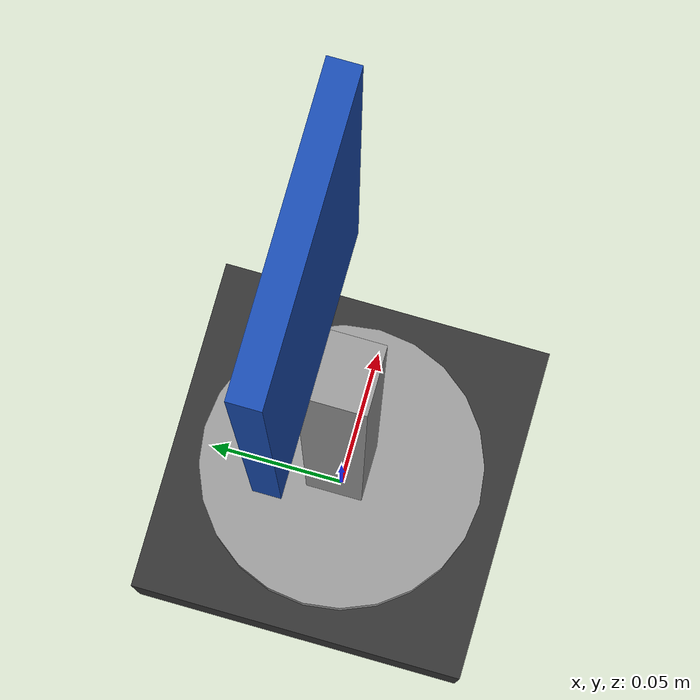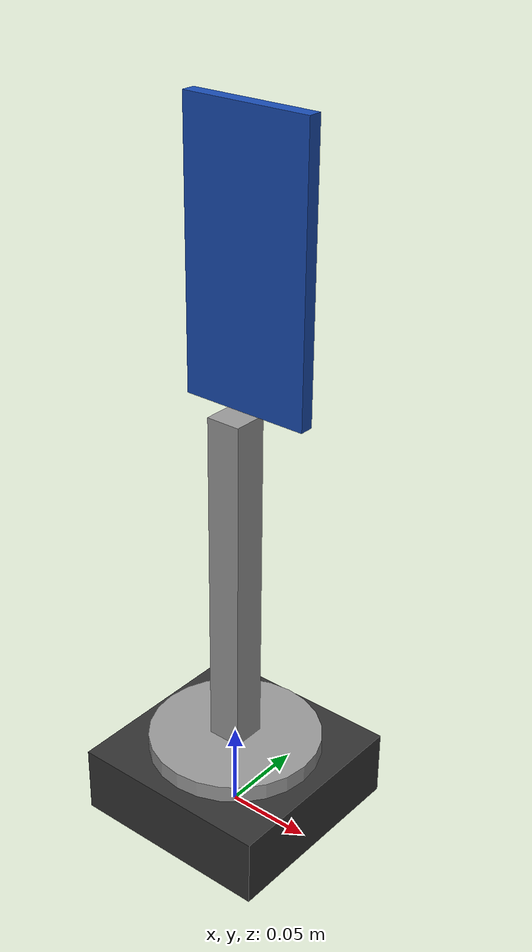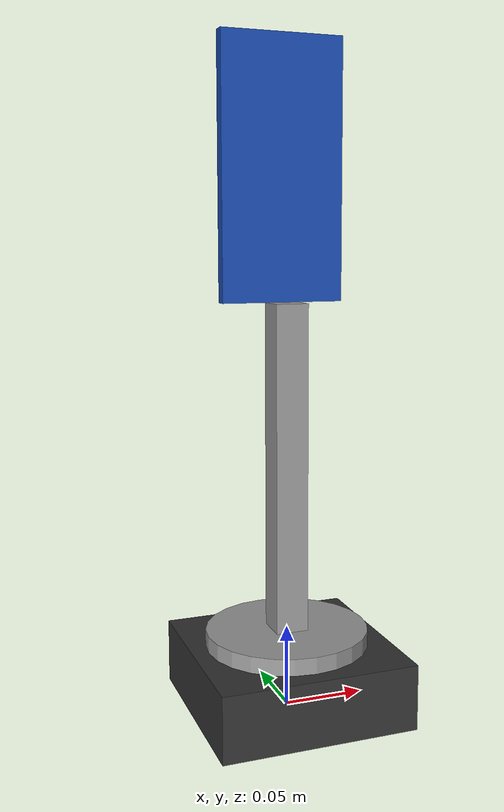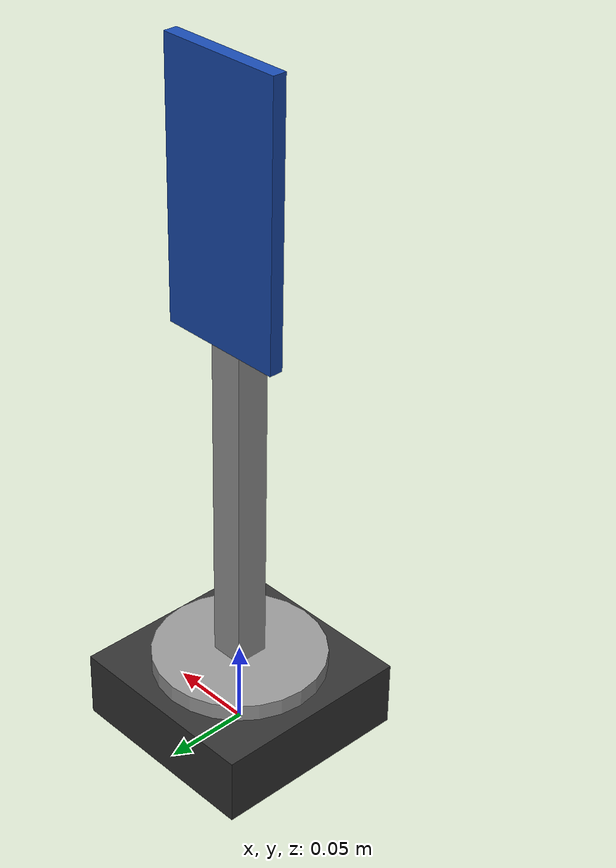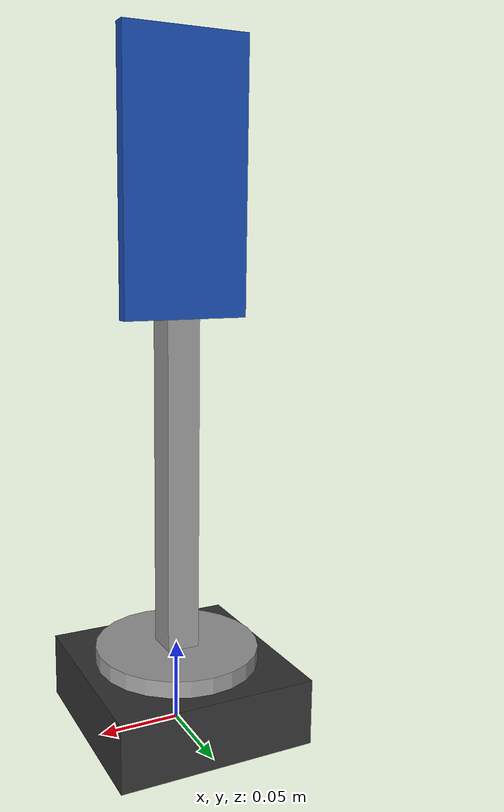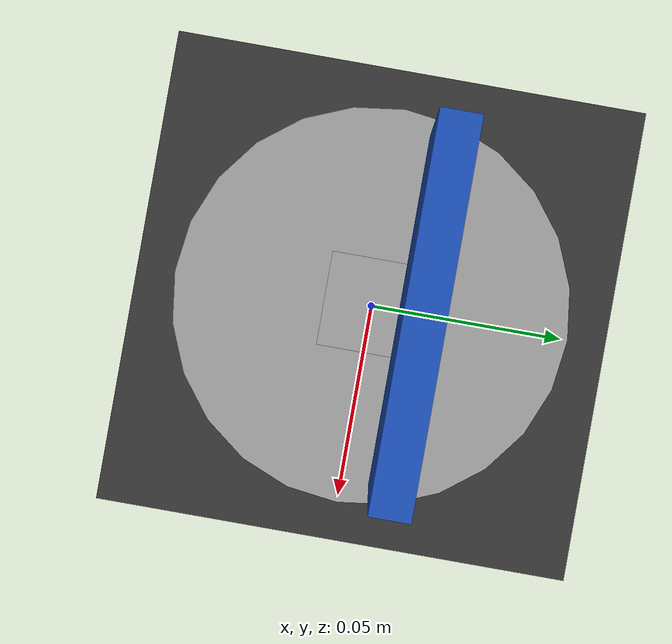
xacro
<?xml version="1.0"?>
<robot name="attendance_stand" xmlns:xacro="http://www.ros.org/wiki/xacro">

  <!-- ============================================================
       MATERIAL DEFINITIONS
       ============================================================ -->
  <material name="dark_grey">
    <color rgba="0.2 0.2 0.2 1.0"/>
  </material>

  <material name="light_grey">
    <color rgba="0.6 0.6 0.6 1.0"/>
  </material>

  <material name="phone_blue">
    <color rgba="0.1 0.3 0.7 1.0"/>
  </material>

  <!-- ============================================================
       INERTIA MACROS
       ============================================================ -->
  <xacro:macro name="box_inertia" params="m x y z">
    <inertial>
      <mass value="${m}"/>
      <inertia
        ixx="${m*(y*y + z*z)/12.0}"
        ixy="0.0"
        ixz="0.0"
        iyy="${m*(x*x + z*z)/12.0}"
        iyz="0.0"
        izz="${m*(x*x + y*y)/12.0}"/>
    </inertial>
  </xacro:macro>

  <xacro:macro name="cylinder_inertia" params="m r h">
    <inertial>
      <mass value="${m}"/>
      <inertia
        ixx="${m*(3*r*r + h*h)/12.0}"
        ixy="0.0"
        ixz="0.0"
        iyy="${m*(3*r*r + h*h)/12.0}"
        iyz="0.0"
        izz="${m*r*r/2.0}"/>
    </inertial>
  </xacro:macro>

  <!-- ============================================================
       XACRO PROPERTIES  (edit dimensions here)
       ============================================================ -->
  <!-- Base -->
  <xacro:property name="base_x"       value="0.12"/>
  <xacro:property name="base_y"       value="0.12"/>
  <xacro:property name="base_z"       value="0.04"/>
  <xacro:property name="base_mass"    value="0.5"/>

  <!-- Rotating platform (thin disk modelled as cylinder) -->
  <xacro:property name="platform_r"    value="0.05"/>
  <xacro:property name="platform_h"    value="0.01"/>
  <xacro:property name="platform_mass" value="0.1"/>

  <!-- Vertical holder arm -->
  <xacro:property name="holder_x"      value="0.02"/>
  <xacro:property name="holder_y"      value="0.02"/>
  <xacro:property name="holder_z"      value="0.20"/>
  <xacro:property name="holder_mass"   value="0.1"/>

  <!-- Phone dimensions -->
  <xacro:property name="phone_x"       value="0.075"/>
  <xacro:property name="phone_y"       value="0.008"/>
  <xacro:property name="phone_z"       value="0.155"/>
  <xacro:property name="phone_mass"    value="0.18"/>

  <!-- ============================================================
       LINK: base_link  (fixed to world / table surface)
       ============================================================ -->
  <link name="base_link">
    <visual>
      <origin xyz="0 0 ${base_z/2}" rpy="0 0 0"/>
      <geometry>
        <box size="${base_x} ${base_y} ${base_z}"/>
      </geometry>
      <material name="dark_grey"/>
    </visual>
    <collision>
      <origin xyz="0 0 ${base_z/2}" rpy="0 0 0"/>
      <geometry>
        <box size="${base_x} ${base_y} ${base_z}"/>
      </geometry>
    </collision>
    <xacro:box_inertia m="${base_mass}" x="${base_x}" y="${base_y}" z="${base_z}"/>
  </link>

  <joint name="rotating_joint" type="revolute">
    <parent link="base_link"/>
    <child link="rotating_platform"/>
    <!-- Origin sits on top of the base -->
    <origin xyz="0 0 ${base_z}" rpy="0 0 0"/>
    <!-- Rotation axis: Z vertical = horizontal platform spin -->
    <axis xyz="0 0 1"/>
    <!-- Allow nearly full 360 degrees (pi = ~180 degrees each way) -->
    <limit lower="-3.14159265" upper="3.14159265" effort="10.0" velocity="1.0"/>
    <dynamics damping="0.1" friction="0.05"/>
  </joint>

  <!-- ============================================================
       LINK: rotating_platform  (spins with the joint)
       ============================================================ -->
  <link name="rotating_platform">
    <visual>
      <origin xyz="0 0 ${platform_h/2}" rpy="0 0 0"/>
      <geometry>
        <cylinder radius="${platform_r}" length="${platform_h}"/>
      </geometry>
      <material name="light_grey"/>
    </visual>
    <collision>
      <origin xyz="0 0 ${platform_h/2}" rpy="0 0 0"/>
      <geometry>
        <cylinder radius="${platform_r}" length="${platform_h}"/>
      </geometry>
    </collision>
    <xacro:cylinder_inertia m="${platform_mass}" r="${platform_r}" h="${platform_h}"/>
  </link>

  <!-- ============================================================
       JOINT: holder_joint  (fixed, holder mounts on platform)
       ============================================================ -->
  <joint name="holder_joint" type="fixed">
    <parent link="rotating_platform"/>
    <child link="phone_holder"/>
    <origin xyz="0 0 ${platform_h}" rpy="0 0 0"/>
  </joint>

  <!-- ============================================================
       LINK: phone_holder  (vertical arm)
       ============================================================ -->
  <link name="phone_holder">
    <visual>
      <origin xyz="0 0 ${holder_z/2}" rpy="0 0 0"/>
      <geometry>
        <box size="${holder_x} ${holder_y} ${holder_z}"/>
      </geometry>
      <material name="light_grey"/>
    </visual>
    <collision>
      <origin xyz="0 0 ${holder_z/2}" rpy="0 0 0"/>
      <geometry>
        <box size="${holder_x} ${holder_y} ${holder_z}"/>
      </geometry>
    </collision>
    <xacro:box_inertia m="${holder_mass}" x="${holder_x}" y="${holder_y}" z="${holder_z}"/>
  </link>

  <!-- ============================================================
       JOINT: phone_joint  (fixed, phone mounted on top of holder)
       ============================================================ -->
  <joint name="phone_joint" type="fixed">
    <parent link="phone_holder"/>
    <child link="phone"/>
    <!-- Sit at the top of the holder, slightly forward in Y -->
    <origin xyz="0 0.01 ${holder_z}" rpy="0 0 0"/>
  </joint>

  <!-- ============================================================
       LINK: phone  (represents the smartphone)
       ============================================================ -->
  <link name="phone">
    <visual>
      <origin xyz="0 0 ${phone_z/2}" rpy="0 0 0"/>
      <geometry>
        <box size="${phone_x} ${phone_y} ${phone_z}"/>
      </geometry>
      <material name="phone_blue"/>
    </visual>
    <collision>
      <origin xyz="0 0 ${phone_z/2}" rpy="0 0 0"/>
      <geometry>
        <box size="${phone_x} ${phone_y} ${phone_z}"/>
      </geometry>
    </collision>
    <xacro:box_inertia m="${phone_mass}" x="${phone_x}" y="${phone_y}" z="${phone_z}"/>
  </link>

</robot>
